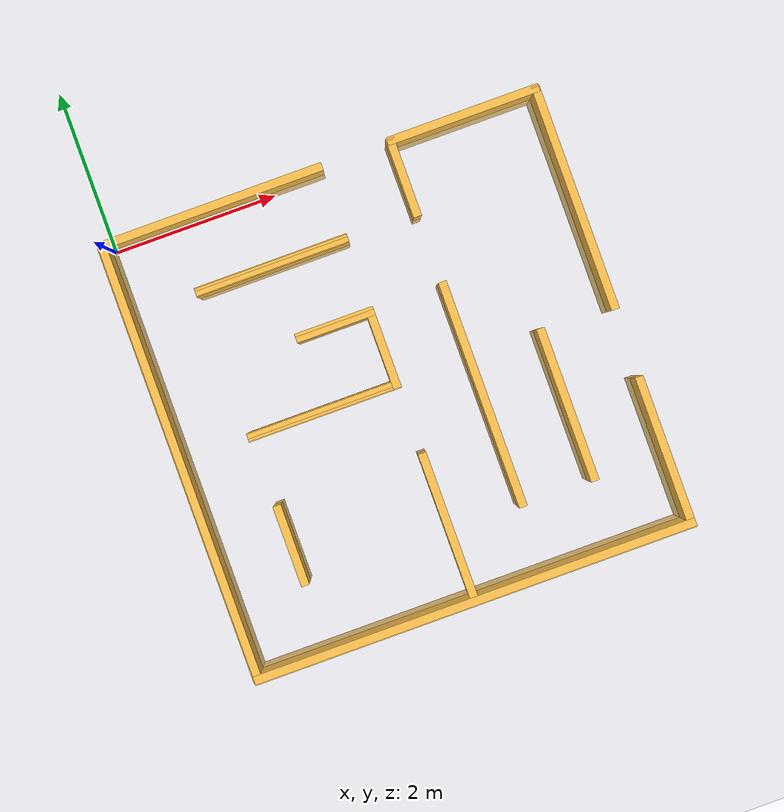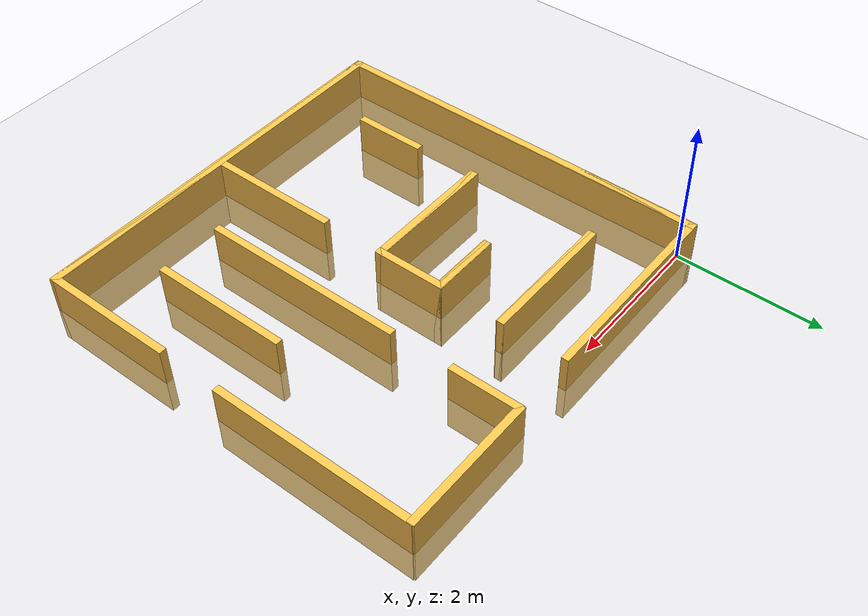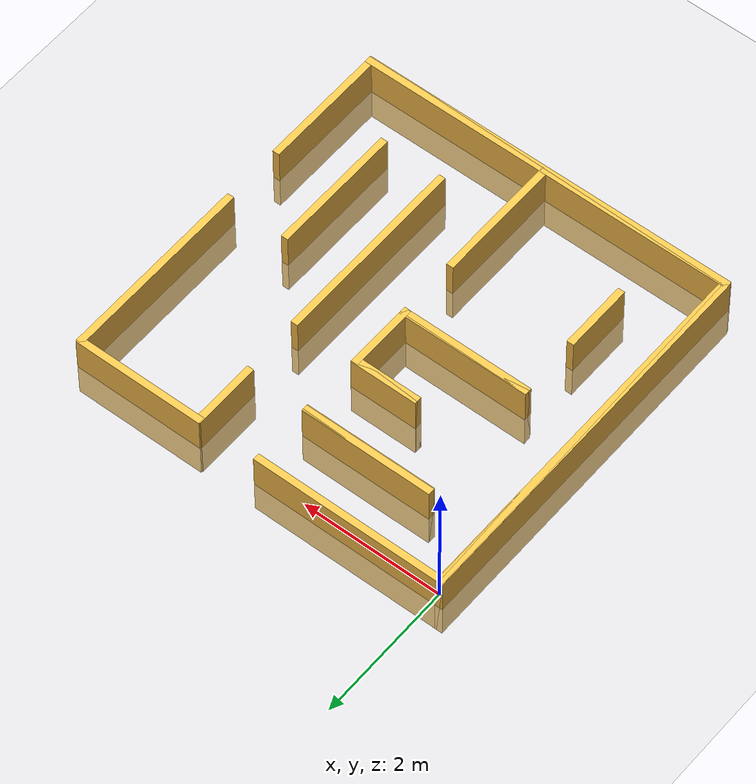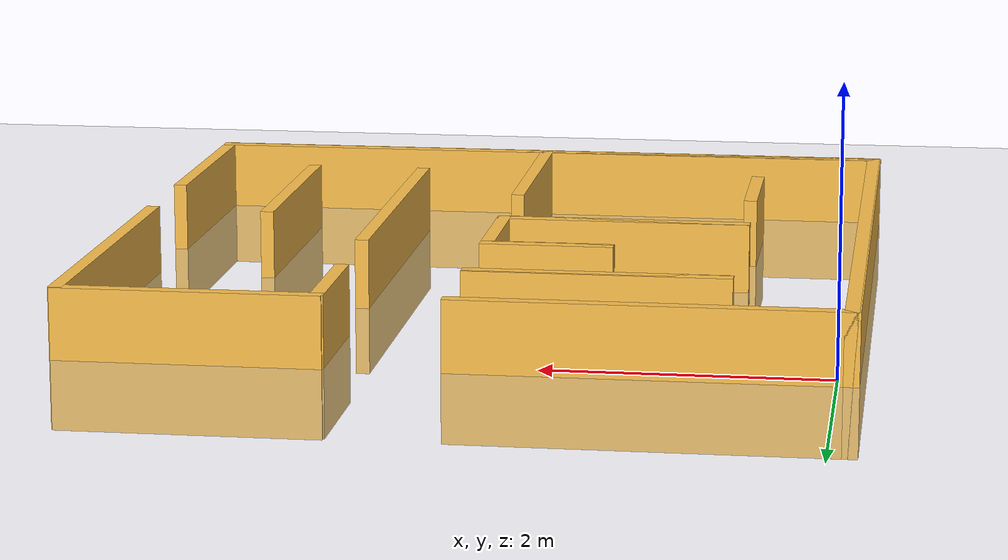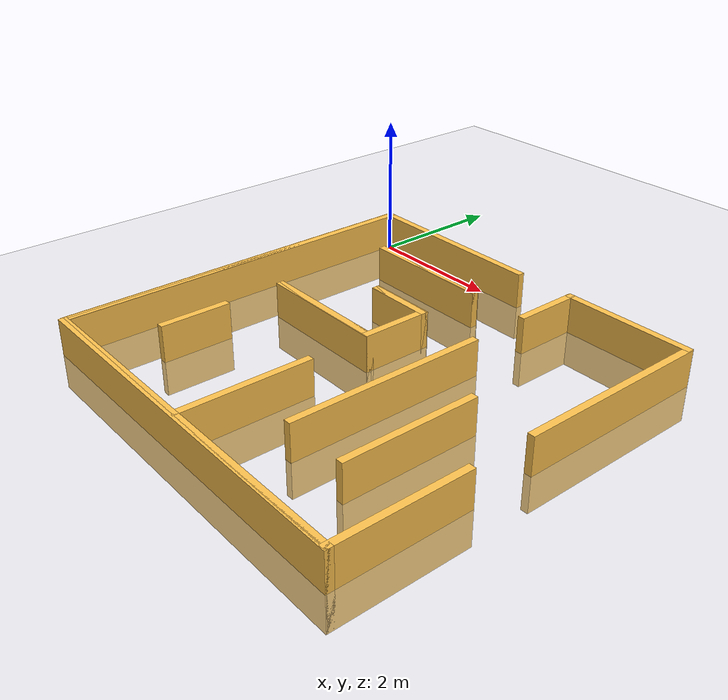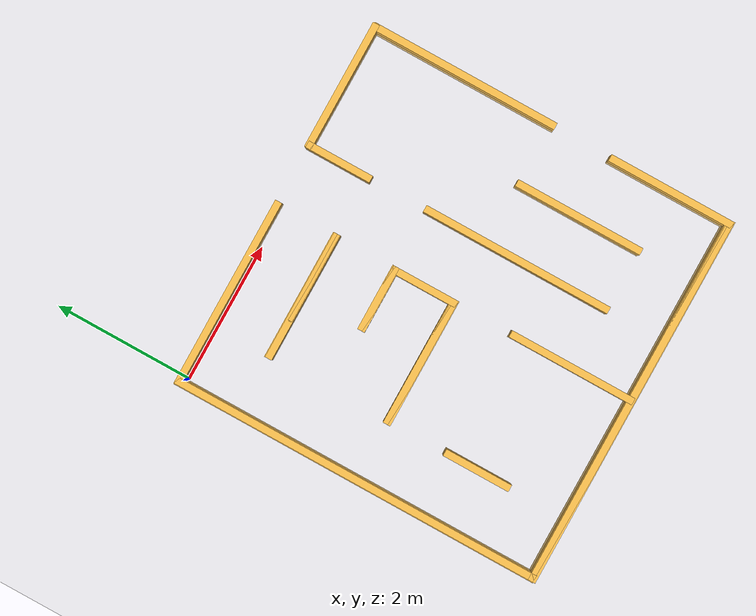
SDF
<sdf version="1.7">
 <world name="default">
  <model name="ground_plane">
   <static>1</static>
   <link name="link">
    <collision name="collision">
     <geometry><plane><normal>0 0 1</normal><size>100 100</size></plane></geometry>
     <surface><friction><ode><mu>100</mu><mu2>50</mu2></ode></friction></surface>
    </collision>
    <visual name="visual">
     <cast_shadows>0</cast_shadows>
     <geometry><plane><normal>0 0 1</normal><size>100 100</size></plane></geometry>
     <material>
      <script><uri>file://media/materials/scripts/gazebo.material</uri><name>Gazebo/Grey</name></script>
     </material>
    </visual>
   </link>
  </model>
  <model name="maze_test">
   <link name="Wall_0">
    <visual name="Wall_0_Visual">
     <pose>2.595 5.28 0 0 -0 0</pose>
     <geometry><box><size>5.47 0.1 1</size></box></geometry>
     <material>
      <script><uri>file://media/materials/scripts/gazebo.material</uri><name>Gazebo/Grey</name></script>
      <ambient>1 0.764706 0.305882 1</ambient>
      <diffuse>0.7 0.7 0.7 1</diffuse>
      <specular>0.01 0.01 0.01 1</specular>
      <emissive>0 0 0 1</emissive>
      <shader type="pixel"/>
     </material>
    </visual>
    <collision name="Wall_0_Collision">
     <pose>2.595 5.28 0 0 -0 0</pose>
     <geometry><box><size>5.47 0.1 1</size></box></geometry>
     <surface>
      <friction><ode><mu>1</mu><mu2>1</mu2><fdir1>0 0 0</fdir1><slip1>0</slip1><slip2>0</slip2></ode></friction>
      <bounce><restitution_coefficient>0</restitution_coefficient><threshold>1e+06</threshold></bounce>
      <contact>
       <collide_without_contact>0</collide_without_contact>
       <collide_without_contact_bitmask>1</collide_without_contact_bitmask>
       <collide_bitmask>1</collide_bitmask>
       <ode>
        <soft_cfm>0</soft_cfm>
        <soft_erp>0.2</soft_erp>
        <kp>1e+13</kp>
        <kd>1</kd>
        <max_vel>0.01</max_vel>
        <min_depth>0</min_depth>
       </ode>
       <bullet>
        <split_impulse>1</split_impulse>
        <split_impulse_penetration_threshold>-0.01</split_impulse_penetration_threshold>
        <soft_cfm>0</soft_cfm>
        <soft_erp>0.2</soft_erp>
        <kp>1e+13</kp>
        <kd>1</kd>
       </bullet>
      </contact>
     </surface>
    </collision>
   </link>
   <link name="Wall_1">
    <visual name="Wall_1_Visual">
     <pose>4.39 -0.1 0 0 -0 0</pose>
     <geometry><box><size>1.88 0.1 1</size></box></geometry>
     <material>
      <script><uri>file://media/materials/scripts/gazebo.material</uri><name>Gazebo/Grey</name></script>
      <ambient>1 0.764706 0.305882 1</ambient>
      <diffuse>0.7 0.7 0.7 1</diffuse>
      <specular>0.01 0.01 0.01 1</specular>
      <emissive>0 0 0 1</emissive>
      <shader type="pixel"/>
     </material>
    </visual>
    <collision name="Wall_1_Collision">
     <pose>4.39 -0.1 0 0 -0 0</pose>
     <geometry><box><size>1.88 0.1 1</size></box></geometry>
     <surface>
      <friction><ode><mu>1</mu><mu2>1</mu2><fdir1>0 0 0</fdir1><slip1>0</slip1><slip2>0</slip2></ode></friction>
      <bounce><restitution_coefficient>0</restitution_coefficient><threshold>1e+06</threshold></bounce>
      <contact>
       <collide_without_contact>0</collide_without_contact>
       <collide_without_contact_bitmask>1</collide_without_contact_bitmask>
       <collide_bitmask>1</collide_bitmask>
       <ode>
        <soft_cfm>0</soft_cfm>
        <soft_erp>0.2</soft_erp>
        <kp>1e+13</kp>
        <kd>1</kd>
        <max_vel>0.01</max_vel>
        <min_depth>0</min_depth>
       </ode>
       <bullet>
        <split_impulse>1</split_impulse>
        <split_impulse_penetration_threshold>-0.01</split_impulse_penetration_threshold>
        <soft_cfm>0</soft_cfm>
        <soft_erp>0.2</soft_erp>
        <kp>1e+13</kp>
        <kd>1</kd>
       </bullet>
      </contact>
     </surface>
    </collision>
   </link>
   <link name="Wall_2">
    <visual name="Wall_2_Visual">
     <pose>5.29 1.255 0 0 -0 0</pose>
     <geometry><box><size>0.1 2.77 1</size></box></geometry>
     <material>
      <script><uri>file://media/materials/scripts/gazebo.material</uri><name>Gazebo/Grey</name></script>
      <ambient>1 0.764706 0.305882 1</ambient>
      <diffuse>0.7 0.7 0.7 1</diffuse>
      <specular>0.01 0.01 0.01 1</specular>
      <emissive>0 0 0 1</emissive>
      <shader type="pixel"/>
     </material>
    </visual>
    <collision name="Wall_2_Collision">
     <pose>5.29 1.255 0 0 -0 0</pose>
     <geometry><box><size>0.1 2.77 1</size></box></geometry>
     <surface>
      <friction><ode><mu>1</mu><mu2>1</mu2><fdir1>0 0 0</fdir1><slip1>0</slip1><slip2>0</slip2></ode></friction>
      <bounce><restitution_coefficient>0</restitution_coefficient><threshold>1e+06</threshold></bounce>
      <contact>
       <collide_without_contact>0</collide_without_contact>
       <collide_without_contact_bitmask>1</collide_without_contact_bitmask>
       <collide_bitmask>1</collide_bitmask>
       <ode>
        <soft_cfm>0</soft_cfm>
        <soft_erp>0.2</soft_erp>
        <kp>1e+13</kp>
        <kd>1</kd>
        <max_vel>0.01</max_vel>
        <min_depth>0</min_depth>
       </ode>
       <bullet>
        <split_impulse>1</split_impulse>
        <split_impulse_penetration_threshold>-0.01</split_impulse_penetration_threshold>
        <soft_cfm>0</soft_cfm>
        <soft_erp>0.2</soft_erp>
        <kp>1e+13</kp>
        <kd>1</kd>
       </bullet>
      </contact>
     </surface>
    </collision>
   </link>
   <link name="Wall_3">
    <visual name="Wall_3_Visual">
     <pose>-0.09 2.595 0 0 -0 0</pose>
     <geometry><box><size>0.1 5.47 1</size></box></geometry>
     <material>
      <script><uri>file://media/materials/scripts/gazebo.material</uri><name>Gazebo/Grey</name></script>
      <ambient>1 0.764706 0.305882 1</ambient>
      <diffuse>0.7 0.7 0.7 1</diffuse>
      <specular>0.01 0.01 0.01 1</specular>
      <emissive>0 0 0 1</emissive>
      <shader type="pixel"/>
     </material>
    </visual>
    <collision name="Wall_3_Collision">
     <pose>-0.09 2.595 0 0 -0 0</pose>
     <geometry><box><size>0.1 5.47 1</size></box></geometry>
     <surface>
      <friction><ode><mu>1</mu><mu2>1</mu2><fdir1>0 0 0</fdir1><slip1>0</slip1><slip2>0</slip2></ode></friction>
      <bounce><restitution_coefficient>0</restitution_coefficient><threshold>1e+06</threshold></bounce>
      <contact>
       <collide_without_contact>0</collide_without_contact>
       <collide_without_contact_bitmask>1</collide_without_contact_bitmask>
       <collide_bitmask>1</collide_bitmask>
       <ode>
        <soft_cfm>0</soft_cfm>
        <soft_erp>0.2</soft_erp>
        <kp>1e+13</kp>
        <kd>1</kd>
        <max_vel>0.01</max_vel>
        <min_depth>0</min_depth>
       </ode>
       <bullet>
        <split_impulse>1</split_impulse>
        <split_impulse_penetration_threshold>-0.01</split_impulse_penetration_threshold>
        <soft_cfm>0</soft_cfm>
        <soft_erp>0.2</soft_erp>
        <kp>1e+13</kp>
        <kd>1</kd>
       </bullet>
      </contact>
     </surface>
    </collision>
   </link>
   <link name="Wall_4">
    <visual name="Wall_4_Visual">
     <pose>1.25 -0.09 0 0 -0 0</pose>
     <geometry><box><size>2.78 0.1 1</size></box></geometry>
     <material>
      <script><uri>file://media/materials/scripts/gazebo.material</uri><name>Gazebo/Grey</name></script>
      <ambient>1 0.764706 0.305882 1</ambient>
      <diffuse>0.7 0.7 0.7 1</diffuse>
      <specular>0.01 0.01 0.01 1</specular>
      <emissive>0 0 0 1</emissive>
      <shader type="pixel"/>
     </material>
    </visual>
    <collision name="Wall_4_Collision">
     <pose>1.25 -0.09 0 0 -0 0</pose>
     <geometry><box><size>2.78 0.1 1</size></box></geometry>
     <surface>
      <friction><ode><mu>1</mu><mu2>1</mu2><fdir1>0 0 0</fdir1><slip1>0</slip1><slip2>0</slip2></ode></friction>
      <bounce><restitution_coefficient>0</restitution_coefficient><threshold>1e+06</threshold></bounce>
      <contact>
       <collide_without_contact>0</collide_without_contact>
       <collide_without_contact_bitmask>1</collide_without_contact_bitmask>
       <collide_bitmask>1</collide_bitmask>
       <ode>
        <soft_cfm>0</soft_cfm>
        <soft_erp>0.2</soft_erp>
        <kp>1e+13</kp>
        <kd>1</kd>
        <max_vel>0.01</max_vel>
        <min_depth>0</min_depth>
       </ode>
       <bullet>
        <split_impulse>1</split_impulse>
        <split_impulse_penetration_threshold>-0.01</split_impulse_penetration_threshold>
        <soft_cfm>0</soft_cfm>
        <soft_erp>0.2</soft_erp>
        <kp>1e+13</kp>
        <kd>1</kd>
       </bullet>
      </contact>
     </surface>
    </collision>
   </link>
   <link name="Wall_5">
    <visual name="Wall_5_Visual">
     <pose>5.28 4.4 0 0 -0 0</pose>
     <geometry><box><size>0.1 1.86 1</size></box></geometry>
     <material>
      <script><uri>file://media/materials/scripts/gazebo.material</uri><name>Gazebo/Grey</name></script>
      <ambient>1 0.764706 0.305882 1</ambient>
      <diffuse>0.7 0.7 0.7 1</diffuse>
      <specular>0.01 0.01 0.01 1</specular>
      <emissive>0 0 0 1</emissive>
      <shader type="pixel"/>
     </material>
    </visual>
    <collision name="Wall_5_Collision">
     <pose>5.28 4.4 0 0 -0 0</pose>
     <geometry><box><size>0.1 1.86 1</size></box></geometry>
     <surface>
      <friction><ode><mu>1</mu><mu2>1</mu2><fdir1>0 0 0</fdir1><slip1>0</slip1><slip2>0</slip2></ode></friction>
      <bounce><restitution_coefficient>0</restitution_coefficient><threshold>1e+06</threshold></bounce>
      <contact>
       <collide_without_contact>0</collide_without_contact>
       <collide_without_contact_bitmask>1</collide_without_contact_bitmask>
       <collide_bitmask>1</collide_bitmask>
       <ode>
        <soft_cfm>0</soft_cfm>
        <soft_erp>0.2</soft_erp>
        <kp>1e+13</kp>
        <kd>1</kd>
        <max_vel>0.01</max_vel>
        <min_depth>0</min_depth>
       </ode>
       <bullet>
        <split_impulse>1</split_impulse>
        <split_impulse_penetration_threshold>-0.01</split_impulse_penetration_threshold>
        <soft_cfm>0</soft_cfm>
        <soft_erp>0.2</soft_erp>
        <kp>1e+13</kp>
        <kd>1</kd>
       </bullet>
      </contact>
     </surface>
    </collision>
   </link>
   <link name="Wall_6">
    <visual name="Wall_6_Visual">
     <pose>2.595 5.29 0 0 -0 0</pose>
     <geometry><box><size>5.47 0.1 1</size></box></geometry>
     <material>
      <script><uri>file://media/materials/scripts/gazebo.material</uri><name>Gazebo/Grey</name></script>
      <ambient>1 0.764706 0.305882 1</ambient>
      <diffuse>0.7 0.7 0.7 1</diffuse>
      <specular>0.01 0.01 0.01 1</specular>
      <emissive>0 0 0 1</emissive>
      <shader type="pixel"/>
     </material>
    </visual>
    <collision name="Wall_6_Collision">
     <pose>2.595 5.29 0 0 -0 0</pose>
     <geometry><box><size>5.47 0.1 1</size></box></geometry>
     <surface>
      <friction><ode><mu>1</mu><mu2>1</mu2><fdir1>0 0 0</fdir1><slip1>0</slip1><slip2>0</slip2></ode></friction>
      <bounce><restitution_coefficient>0</restitution_coefficient><threshold>1e+06</threshold></bounce>
      <contact>
       <collide_without_contact>0</collide_without_contact>
       <collide_without_contact_bitmask>1</collide_without_contact_bitmask>
       <collide_bitmask>1</collide_bitmask>
       <ode>
        <soft_cfm>0</soft_cfm>
        <soft_erp>0.2</soft_erp>
        <kp>1e+13</kp>
        <kd>1</kd>
        <max_vel>0.01</max_vel>
        <min_depth>0</min_depth>
       </ode>
       <bullet>
        <split_impulse>1</split_impulse>
        <split_impulse_penetration_threshold>-0.01</split_impulse_penetration_threshold>
        <soft_cfm>0</soft_cfm>
        <soft_erp>0.2</soft_erp>
        <kp>1e+13</kp>
        <kd>1</kd>
       </bullet>
      </contact>
     </surface>
    </collision>
   </link>
   <link name="Wall_7">
    <visual name="Wall_7_Visual">
     <pose>2.59 2.145 0 0 -0 0</pose>
     <geometry><box><size>0.1 0.99 1</size></box></geometry>
     <material>
      <script><uri>file://media/materials/scripts/gazebo.material</uri><name>Gazebo/Grey</name></script>
      <ambient>1 0.764706 0.305882 1</ambient>
      <diffuse>0.7 0.7 0.7 1</diffuse>
      <specular>0.01 0.01 0.01 1</specular>
      <emissive>0 0 0 1</emissive>
      <shader type="pixel"/>
     </material>
    </visual>
    <collision name="Wall_7_Collision">
     <pose>2.59 2.145 0 0 -0 0</pose>
     <geometry><box><size>0.1 0.99 1</size></box></geometry>
     <surface>
      <friction><ode><mu>1</mu><mu2>1</mu2><fdir1>0 0 0</fdir1><slip1>0</slip1><slip2>0</slip2></ode></friction>
      <bounce><restitution_coefficient>0</restitution_coefficient><threshold>1e+06</threshold></bounce>
      <contact>
       <collide_without_contact>0</collide_without_contact>
       <collide_without_contact_bitmask>1</collide_without_contact_bitmask>
       <collide_bitmask>1</collide_bitmask>
       <ode>
        <soft_cfm>0</soft_cfm>
        <soft_erp>0.2</soft_erp>
        <kp>1e+13</kp>
        <kd>1</kd>
        <max_vel>0.01</max_vel>
        <min_depth>0</min_depth>
       </ode>
       <bullet>
        <split_impulse>1</split_impulse>
        <split_impulse_penetration_threshold>-0.01</split_impulse_penetration_threshold>
        <soft_cfm>0</soft_cfm>
        <soft_erp>0.2</soft_erp>
        <kp>1e+13</kp>
        <kd>1</kd>
       </bullet>
      </contact>
     </surface>
    </collision>
   </link>
   <link name="Wall_8">
    <visual name="Wall_8_Visual">
     <pose>-0.1 2.585 0 0 -0 0</pose>
     <geometry><box><size>0.1 5.45 1</size></box></geometry>
     <material>
      <script><uri>file://media/materials/scripts/gazebo.material</uri><name>Gazebo/Grey</name></script>
      <ambient>1 0.764706 0.305882 1</ambient>
      <diffuse>0.7 0.7 0.7 1</diffuse>
      <specular>0.01 0.01 0.01 1</specular>
      <emissive>0 0 0 1</emissive>
      <shader type="pixel"/>
     </material>
    </visual>
    <collision name="Wall_8_Collision">
     <pose>-0.1 2.585 0 0 -0 0</pose>
     <geometry><box><size>0.1 5.45 1</size></box></geometry>
     <surface>
      <friction><ode><mu>1</mu><mu2>1</mu2><fdir1>0 0 0</fdir1><slip1>0</slip1><slip2>0</slip2></ode></friction>
      <bounce><restitution_coefficient>0</restitution_coefficient><threshold>1e+06</threshold></bounce>
      <contact>
       <collide_without_contact>0</collide_without_contact>
       <collide_without_contact_bitmask>1</collide_without_contact_bitmask>
       <collide_bitmask>1</collide_bitmask>
       <ode>
        <soft_cfm>0</soft_cfm>
        <soft_erp>0.2</soft_erp>
        <kp>1e+13</kp>
        <kd>1</kd>
        <max_vel>0.01</max_vel>
        <min_depth>0</min_depth>
       </ode>
       <bullet>
        <split_impulse>1</split_impulse>
        <split_impulse_penetration_threshold>-0.01</split_impulse_penetration_threshold>
        <soft_cfm>0</soft_cfm>
        <soft_erp>0.2</soft_erp>
        <kp>1e+13</kp>
        <kd>1</kd>
       </bullet>
      </contact>
     </surface>
    </collision>
   </link>
   <link name="Wall_9">
    <visual name="Wall_9_Visual">
     <pose>3.5 3.045 0 0 -0 0</pose>
     <geometry><box><size>0.1 2.79 1</size></box></geometry>
     <material>
      <script><uri>file://media/materials/scripts/gazebo.material</uri><name>Gazebo/Grey</name></script>
      <ambient>1 0.764706 0.305882 1</ambient>
      <diffuse>0.7 0.7 0.7 1</diffuse>
      <specular>0.01 0.01 0.01 1</specular>
      <emissive>0 0 0 1</emissive>
      <shader type="pixel"/>
     </material>
    </visual>
    <collision name="Wall_9_Collision">
     <pose>3.5 3.045 0 0 -0 0</pose>
     <geometry><box><size>0.1 2.79 1</size></box></geometry>
     <surface>
      <friction><ode><mu>1</mu><mu2>1</mu2><fdir1>0 0 0</fdir1><slip1>0</slip1><slip2>0</slip2></ode></friction>
      <bounce><restitution_coefficient>0</restitution_coefficient><threshold>1e+06</threshold></bounce>
      <contact>
       <collide_without_contact>0</collide_without_contact>
       <collide_without_contact_bitmask>1</collide_without_contact_bitmask>
       <collide_bitmask>1</collide_bitmask>
       <ode>
        <soft_cfm>0</soft_cfm>
        <soft_erp>0.2</soft_erp>
        <kp>1e+13</kp>
        <kd>1</kd>
        <max_vel>0.01</max_vel>
        <min_depth>0</min_depth>
       </ode>
       <bullet>
        <split_impulse>1</split_impulse>
        <split_impulse_penetration_threshold>-0.01</split_impulse_penetration_threshold>
        <soft_cfm>0</soft_cfm>
        <soft_erp>0.2</soft_erp>
        <kp>1e+13</kp>
        <kd>1</kd>
       </bullet>
      </contact>
     </surface>
    </collision>
   </link>
   <link name="Wall_10">
    <visual name="Wall_10_Visual">
     <pose>2.6 4.38 0 0 -0 0</pose>
     <geometry><box><size>0.1 1.86 1</size></box></geometry>
     <material>
      <script><uri>file://media/materials/scripts/gazebo.material</uri><name>Gazebo/Grey</name></script>
      <ambient>1 0.764706 0.305882 1</ambient>
      <diffuse>0.7 0.7 0.7 1</diffuse>
      <specular>0.01 0.01 0.01 1</specular>
      <emissive>0 0 0 1</emissive>
      <shader type="pixel"/>
     </material>
    </visual>
    <collision name="Wall_10_Collision">
     <pose>2.6 4.38 0 0 -0 0</pose>
     <geometry><box><size>0.1 1.86 1</size></box></geometry>
     <surface>
      <friction><ode><mu>1</mu><mu2>1</mu2><fdir1>0 0 0</fdir1><slip1>0</slip1><slip2>0</slip2></ode></friction>
      <bounce><restitution_coefficient>0</restitution_coefficient><threshold>1e+06</threshold></bounce>
      <contact>
       <collide_without_contact>0</collide_without_contact>
       <collide_without_contact_bitmask>1</collide_without_contact_bitmask>
       <collide_bitmask>1</collide_bitmask>
       <ode>
        <soft_cfm>0</soft_cfm>
        <soft_erp>0.2</soft_erp>
        <kp>1e+13</kp>
        <kd>1</kd>
        <max_vel>0.01</max_vel>
        <min_depth>0</min_depth>
       </ode>
       <bullet>
        <split_impulse>1</split_impulse>
        <split_impulse_penetration_threshold>-0.01</split_impulse_penetration_threshold>
        <soft_cfm>0</soft_cfm>
        <soft_erp>0.2</soft_erp>
        <kp>1e+13</kp>
        <kd>1</kd>
       </bullet>
      </contact>
     </surface>
    </collision>
   </link>
   <link name="Wall_11">
    <visual name="Wall_11_Visual">
     <pose>3.49 0.355 0 0 -0 0</pose>
     <geometry><box><size>0.1 0.97 1</size></box></geometry>
     <material>
      <script><uri>file://media/materials/scripts/gazebo.material</uri><name>Gazebo/Grey</name></script>
      <ambient>1 0.764706 0.305882 1</ambient>
      <diffuse>0.7 0.7 0.7 1</diffuse>
      <specular>0.01 0.01 0.01 1</specular>
      <emissive>0 0 0 1</emissive>
      <shader type="pixel"/>
     </material>
    </visual>
    <collision name="Wall_11_Collision">
     <pose>3.49 0.355 0 0 -0 0</pose>
     <geometry><box><size>0.1 0.97 1</size></box></geometry>
     <surface>
      <friction><ode><mu>1</mu><mu2>1</mu2><fdir1>0 0 0</fdir1><slip1>0</slip1><slip2>0</slip2></ode></friction>
      <bounce><restitution_coefficient>0</restitution_coefficient><threshold>1e+06</threshold></bounce>
      <contact>
       <collide_without_contact>0</collide_without_contact>
       <collide_without_contact_bitmask>1</collide_without_contact_bitmask>
       <collide_bitmask>1</collide_bitmask>
       <ode>
        <soft_cfm>0</soft_cfm>
        <soft_erp>0.2</soft_erp>
        <kp>1e+13</kp>
        <kd>1</kd>
        <max_vel>0.01</max_vel>
        <min_depth>0</min_depth>
       </ode>
       <bullet>
        <split_impulse>1</split_impulse>
        <split_impulse_penetration_threshold>-0.01</split_impulse_penetration_threshold>
        <soft_cfm>0</soft_cfm>
        <soft_erp>0.2</soft_erp>
        <kp>1e+13</kp>
        <kd>1</kd>
       </bullet>
      </contact>
     </surface>
    </collision>
   </link>
   <link name="Wall_12">
    <visual name="Wall_12_Visual">
     <pose>1.695 0.8 0 0 -0 0</pose>
     <geometry><box><size>1.89 0.1 1</size></box></geometry>
     <material>
      <script><uri>file://media/materials/scripts/gazebo.material</uri><name>Gazebo/Grey</name></script>
      <ambient>1 0.764706 0.305882 1</ambient>
      <diffuse>0.7 0.7 0.7 1</diffuse>
      <specular>0.01 0.01 0.01 1</specular>
      <emissive>0 0 0 1</emissive>
      <shader type="pixel"/>
     </material>
    </visual>
    <collision name="Wall_12_Collision">
     <pose>1.695 0.8 0 0 -0 0</pose>
     <geometry><box><size>1.89 0.1 1</size></box></geometry>
     <surface>
      <friction><ode><mu>1</mu><mu2>1</mu2><fdir1>0 0 0</fdir1><slip1>0</slip1><slip2>0</slip2></ode></friction>
      <bounce><restitution_coefficient>0</restitution_coefficient><threshold>1e+06</threshold></bounce>
      <contact>
       <collide_without_contact>0</collide_without_contact>
       <collide_without_contact_bitmask>1</collide_without_contact_bitmask>
       <collide_bitmask>1</collide_bitmask>
       <ode>
        <soft_cfm>0</soft_cfm>
        <soft_erp>0.2</soft_erp>
        <kp>1e+13</kp>
        <kd>1</kd>
        <max_vel>0.01</max_vel>
        <min_depth>0</min_depth>
       </ode>
       <bullet>
        <split_impulse>1</split_impulse>
        <split_impulse_penetration_threshold>-0.01</split_impulse_penetration_threshold>
        <soft_cfm>0</soft_cfm>
        <soft_erp>0.2</soft_erp>
        <kp>1e+13</kp>
        <kd>1</kd>
       </bullet>
      </contact>
     </surface>
    </collision>
   </link>
   <link name="Wall_13">
    <visual name="Wall_13_Visual">
     <pose>1.695 0.79 0 0 -0 0</pose>
     <geometry><box><size>1.89 0.1 1</size></box></geometry>
     <material>
      <script><uri>file://media/materials/scripts/gazebo.material</uri><name>Gazebo/Grey</name></script>
      <ambient>1 0.764706 0.305882 1</ambient>
      <diffuse>0.7 0.7 0.7 1</diffuse>
      <specular>0.01 0.01 0.01 1</specular>
      <emissive>0 0 0 1</emissive>
      <shader type="pixel"/>
     </material>
    </visual>
    <collision name="Wall_13_Collision">
     <pose>1.695 0.79 0 0 -0 0</pose>
     <geometry><box><size>1.89 0.1 1</size></box></geometry>
     <surface>
      <friction><ode><mu>1</mu><mu2>1</mu2><fdir1>0 0 0</fdir1><slip1>0</slip1><slip2>0</slip2></ode></friction>
      <bounce><restitution_coefficient>0</restitution_coefficient><threshold>1e+06</threshold></bounce>
      <contact>
       <collide_without_contact>0</collide_without_contact>
       <collide_without_contact_bitmask>1</collide_without_contact_bitmask>
       <collide_bitmask>1</collide_bitmask>
       <ode>
        <soft_cfm>0</soft_cfm>
        <soft_erp>0.2</soft_erp>
        <kp>1e+13</kp>
        <kd>1</kd>
        <max_vel>0.01</max_vel>
        <min_depth>0</min_depth>
       </ode>
       <bullet>
        <split_impulse>1</split_impulse>
        <split_impulse_penetration_threshold>-0.01</split_impulse_penetration_threshold>
        <soft_cfm>0</soft_cfm>
        <soft_erp>0.2</soft_erp>
        <kp>1e+13</kp>
        <kd>1</kd>
       </bullet>
      </contact>
     </surface>
    </collision>
   </link>
   <link name="Wall_14">
    <visual name="Wall_14_Visual">
     <pose>1.695 2.59 0 0 -0 0</pose>
     <geometry><box><size>1.89 0.1 1</size></box></geometry>
     <material>
      <script><uri>file://media/materials/scripts/gazebo.material</uri><name>Gazebo/Grey</name></script>
      <ambient>1 0.764706 0.305882 1</ambient>
      <diffuse>0.7 0.7 0.7 1</diffuse>
      <specular>0.01 0.01 0.01 1</specular>
      <emissive>0 0 0 1</emissive>
      <shader type="pixel"/>
     </material>
    </visual>
    <collision name="Wall_14_Collision">
     <pose>1.695 2.59 0 0 -0 0</pose>
     <geometry><box><size>1.89 0.1 1</size></box></geometry>
     <surface>
      <friction><ode><mu>1</mu><mu2>1</mu2><fdir1>0 0 0</fdir1><slip1>0</slip1><slip2>0</slip2></ode></friction>
      <bounce><restitution_coefficient>0</restitution_coefficient><threshold>1e+06</threshold></bounce>
      <contact>
       <collide_without_contact>0</collide_without_contact>
       <collide_without_contact_bitmask>1</collide_without_contact_bitmask>
       <collide_bitmask>1</collide_bitmask>
       <ode>
        <soft_cfm>0</soft_cfm>
        <soft_erp>0.2</soft_erp>
        <kp>1e+13</kp>
        <kd>1</kd>
        <max_vel>0.01</max_vel>
        <min_depth>0</min_depth>
       </ode>
       <bullet>
        <split_impulse>1</split_impulse>
        <split_impulse_penetration_threshold>-0.01</split_impulse_penetration_threshold>
        <soft_cfm>0</soft_cfm>
        <soft_erp>0.2</soft_erp>
        <kp>1e+13</kp>
        <kd>1</kd>
       </bullet>
      </contact>
     </surface>
    </collision>
   </link>
   <link name="Wall_15">
    <visual name="Wall_15_Visual">
     <pose>1.695 2.6 0 0 -0 0</pose>
     <geometry><box><size>1.89 0.1 1</size></box></geometry>
     <material>
      <script><uri>file://media/materials/scripts/gazebo.material</uri><name>Gazebo/Grey</name></script>
      <ambient>1 0.764706 0.305882 1</ambient>
      <diffuse>0.7 0.7 0.7 1</diffuse>
      <specular>0.01 0.01 0.01 1</specular>
      <emissive>0 0 0 1</emissive>
      <shader type="pixel"/>
     </material>
    </visual>
    <collision name="Wall_15_Collision">
     <pose>1.695 2.6 0 0 -0 0</pose>
     <geometry><box><size>1.89 0.1 1</size></box></geometry>
     <surface>
      <friction><ode><mu>1</mu><mu2>1</mu2><fdir1>0 0 0</fdir1><slip1>0</slip1><slip2>0</slip2></ode></friction>
      <bounce><restitution_coefficient>0</restitution_coefficient><threshold>1e+06</threshold></bounce>
      <contact>
       <collide_without_contact>0</collide_without_contact>
       <collide_without_contact_bitmask>1</collide_without_contact_bitmask>
       <collide_bitmask>1</collide_bitmask>
       <ode>
        <soft_cfm>0</soft_cfm>
        <soft_erp>0.2</soft_erp>
        <kp>1e+13</kp>
        <kd>1</kd>
        <max_vel>0.01</max_vel>
        <min_depth>0</min_depth>
       </ode>
       <bullet>
        <split_impulse>1</split_impulse>
        <split_impulse_penetration_threshold>-0.01</split_impulse_penetration_threshold>
        <soft_cfm>0</soft_cfm>
        <soft_erp>0.2</soft_erp>
        <kp>1e+13</kp>
        <kd>1</kd>
       </bullet>
      </contact>
     </surface>
    </collision>
   </link>
   <link name="Wall_16">
    <visual name="Wall_16_Visual">
     <pose>2.155 1.7 0 0 -0 0</pose>
     <geometry><box><size>0.97 0.1 1</size></box></geometry>
     <material>
      <script><uri>file://media/materials/scripts/gazebo.material</uri><name>Gazebo/Grey</name></script>
      <ambient>1 0.764706 0.305882 1</ambient>
      <diffuse>0.7 0.7 0.7 1</diffuse>
      <specular>0.01 0.01 0.01 1</specular>
      <emissive>0 0 0 1</emissive>
      <shader type="pixel"/>
     </material>
    </visual>
    <collision name="Wall_16_Collision">
     <pose>2.155 1.7 0 0 -0 0</pose>
     <geometry><box><size>0.97 0.1 1</size></box></geometry>
     <surface>
      <friction><ode><mu>1</mu><mu2>1</mu2><fdir1>0 0 0</fdir1><slip1>0</slip1><slip2>0</slip2></ode></friction>
      <bounce><restitution_coefficient>0</restitution_coefficient><threshold>1e+06</threshold></bounce>
      <contact>
       <collide_without_contact>0</collide_without_contact>
       <collide_without_contact_bitmask>1</collide_without_contact_bitmask>
       <collide_bitmask>1</collide_bitmask>
       <ode>
        <soft_cfm>0</soft_cfm>
        <soft_erp>0.2</soft_erp>
        <kp>1e+13</kp>
        <kd>1</kd>
        <max_vel>0.01</max_vel>
        <min_depth>0</min_depth>
       </ode>
       <bullet>
        <split_impulse>1</split_impulse>
        <split_impulse_penetration_threshold>-0.01</split_impulse_penetration_threshold>
        <soft_cfm>0</soft_cfm>
        <soft_erp>0.2</soft_erp>
        <kp>1e+13</kp>
        <kd>1</kd>
       </bullet>
      </contact>
     </surface>
    </collision>
   </link>
   <link name="Wall_17">
    <visual name="Wall_17_Visual">
     <pose>2.155 1.69 0 0 -0 0</pose>
     <geometry><box><size>0.97 0.1 1</size></box></geometry>
     <material>
      <script><uri>file://media/materials/scripts/gazebo.material</uri><name>Gazebo/Grey</name></script>
      <ambient>1 0.764706 0.305882 1</ambient>
      <diffuse>0.7 0.7 0.7 1</diffuse>
      <specular>0.01 0.01 0.01 1</specular>
      <emissive>0 0 0 1</emissive>
      <shader type="pixel"/>
     </material>
    </visual>
    <collision name="Wall_17_Collision">
     <pose>2.155 1.69 0 0 -0 0</pose>
     <geometry><box><size>0.97 0.1 1</size></box></geometry>
     <surface>
      <friction><ode><mu>1</mu><mu2>1</mu2><fdir1>0 0 0</fdir1><slip1>0</slip1><slip2>0</slip2></ode></friction>
      <bounce><restitution_coefficient>0</restitution_coefficient><threshold>1e+06</threshold></bounce>
      <contact>
       <collide_without_contact>0</collide_without_contact>
       <collide_without_contact_bitmask>1</collide_without_contact_bitmask>
       <collide_bitmask>1</collide_bitmask>
       <ode>
        <soft_cfm>0</soft_cfm>
        <soft_erp>0.2</soft_erp>
        <kp>1e+13</kp>
        <kd>1</kd>
        <max_vel>0.01</max_vel>
        <min_depth>0</min_depth>
       </ode>
       <bullet>
        <split_impulse>1</split_impulse>
        <split_impulse_penetration_threshold>-0.01</split_impulse_penetration_threshold>
        <soft_cfm>0</soft_cfm>
        <soft_erp>0.2</soft_erp>
        <kp>1e+13</kp>
        <kd>1</kd>
       </bullet>
      </contact>
     </surface>
    </collision>
   </link>
   <link name="Wall_18">
    <visual name="Wall_18_Visual">
     <pose>4.39 3.495 0 0 -0 0</pose>
     <geometry><box><size>0.1 1.89 1</size></box></geometry>
     <material>
      <script><uri>file://media/materials/scripts/gazebo.material</uri><name>Gazebo/Grey</name></script>
      <ambient>1 0.764706 0.305882 1</ambient>
      <diffuse>0.7 0.7 0.7 1</diffuse>
      <specular>0.01 0.01 0.01 1</specular>
      <emissive>0 0 0 1</emissive>
      <shader type="pixel"/>
     </material>
    </visual>
    <collision name="Wall_18_Collision">
     <pose>4.39 3.495 0 0 -0 0</pose>
     <geometry><box><size>0.1 1.89 1</size></box></geometry>
     <surface>
      <friction><ode><mu>1</mu><mu2>1</mu2><fdir1>0 0 0</fdir1><slip1>0</slip1><slip2>0</slip2></ode></friction>
      <bounce><restitution_coefficient>0</restitution_coefficient><threshold>1e+06</threshold></bounce>
      <contact>
       <collide_without_contact>0</collide_without_contact>
       <collide_without_contact_bitmask>1</collide_without_contact_bitmask>
       <collide_bitmask>1</collide_bitmask>
       <ode>
        <soft_cfm>0</soft_cfm>
        <soft_erp>0.2</soft_erp>
        <kp>1e+13</kp>
        <kd>1</kd>
        <max_vel>0.01</max_vel>
        <min_depth>0</min_depth>
       </ode>
       <bullet>
        <split_impulse>1</split_impulse>
        <split_impulse_penetration_threshold>-0.01</split_impulse_penetration_threshold>
        <soft_cfm>0</soft_cfm>
        <soft_erp>0.2</soft_erp>
        <kp>1e+13</kp>
        <kd>1</kd>
       </bullet>
      </contact>
     </surface>
    </collision>
   </link>
   <link name="Wall_19">
    <visual name="Wall_19_Visual">
     <pose>0.8 3.945 0 0 -0 0</pose>
     <geometry><box><size>0.1 0.99 1</size></box></geometry>
     <material>
      <script><uri>file://media/materials/scripts/gazebo.material</uri><name>Gazebo/Grey</name></script>
      <ambient>1 0.764706 0.305882 1</ambient>
      <diffuse>0.7 0.7 0.7 1</diffuse>
      <specular>0.01 0.01 0.01 1</specular>
      <emissive>0 0 0 1</emissive>
      <shader type="pixel"/>
     </material>
    </visual>
    <collision name="Wall_19_Collision">
     <pose>0.8 3.945 0 0 -0 0</pose>
     <geometry><box><size>0.1 0.99 1</size></box></geometry>
     <surface>
      <friction><ode><mu>1</mu><mu2>1</mu2><fdir1>0 0 0</fdir1><slip1>0</slip1><slip2>0</slip2></ode></friction>
      <bounce><restitution_coefficient>0</restitution_coefficient><threshold>1e+06</threshold></bounce>
      <contact>
       <collide_without_contact>0</collide_without_contact>
       <collide_without_contact_bitmask>1</collide_without_contact_bitmask>
       <collide_bitmask>1</collide_bitmask>
       <ode>
        <soft_cfm>0</soft_cfm>
        <soft_erp>0.2</soft_erp>
        <kp>1e+13</kp>
        <kd>1</kd>
        <max_vel>0.01</max_vel>
        <min_depth>0</min_depth>
       </ode>
       <bullet>
        <split_impulse>1</split_impulse>
        <split_impulse_penetration_threshold>-0.01</split_impulse_penetration_threshold>
        <soft_cfm>0</soft_cfm>
        <soft_erp>0.2</soft_erp>
        <kp>1e+13</kp>
        <kd>1</kd>
       </bullet>
      </contact>
     </surface>
    </collision>
   </link>
   <static>1</static>
   <pose>0 0 0 3.14 -0 0</pose>
  </model>
 </world>
</sdf>
